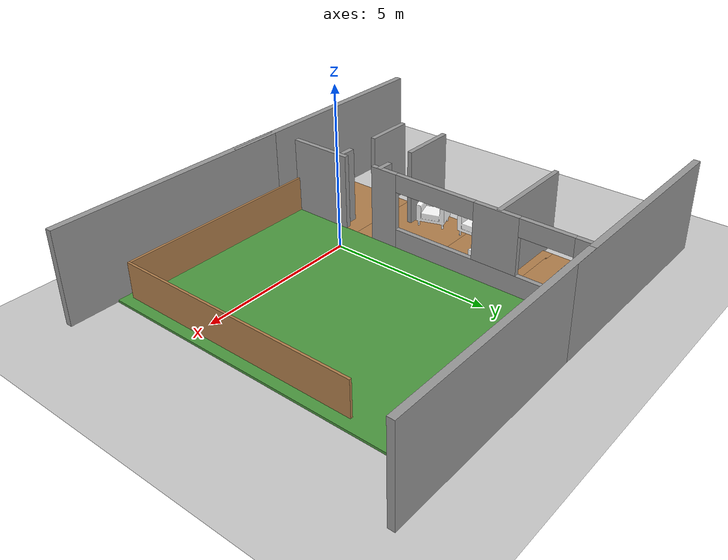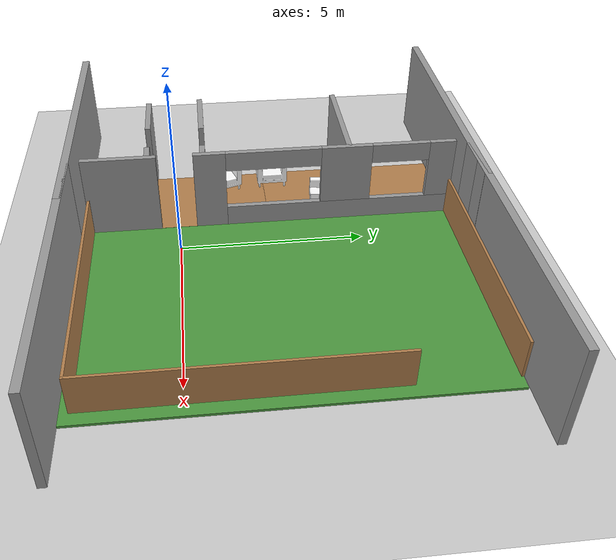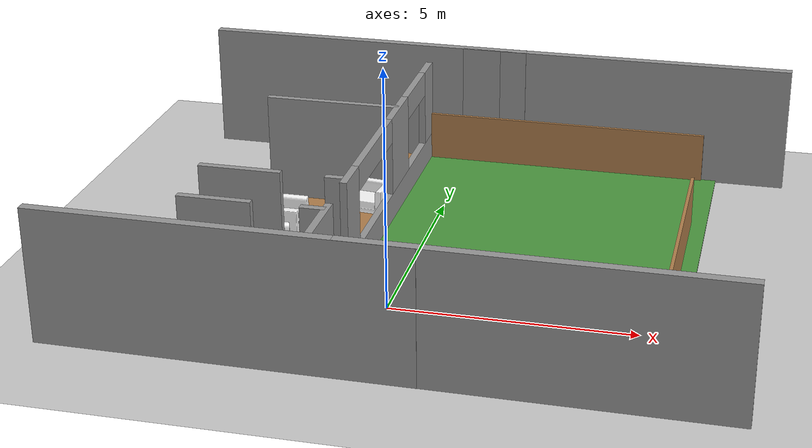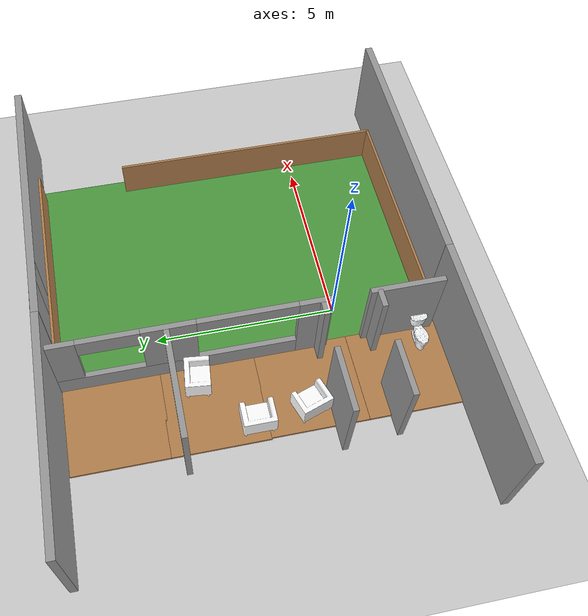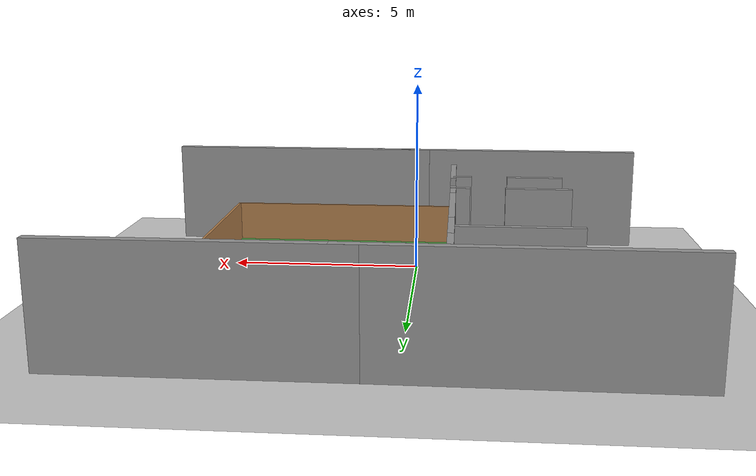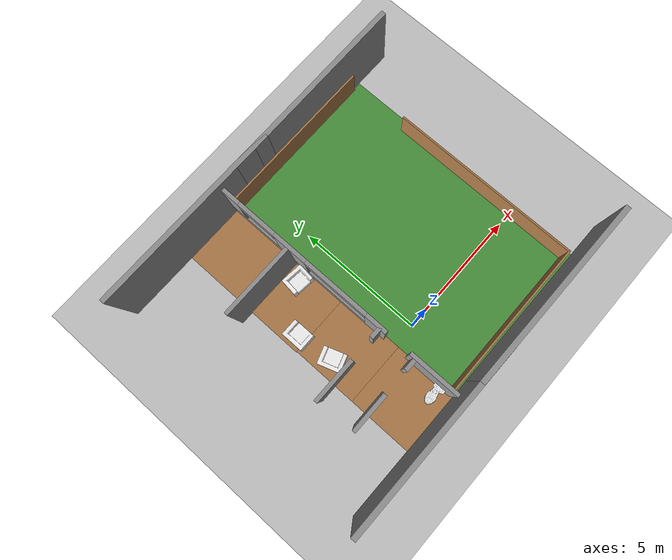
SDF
<sdf version="1.6">
 <world name="default">
  <model name="ground_plane">
   <static>1</static>
   <link name="link">
    <collision name="collision">
     <geometry><plane><normal>0 0 1</normal><size>100 100</size></plane></geometry>
     <surface>
      <contact><collide_bitmask>65535</collide_bitmask></contact>
      <friction><ode><mu>100</mu><mu2>50</mu2></ode></friction>
     </surface>
    </collision>
    <visual name="visual">
     <cast_shadows>0</cast_shadows>
     <geometry><plane><normal>0 0 1</normal><size>100 100</size></plane></geometry>
     <material>
      <script><uri>file://media/materials/scripts/gazebo.material</uri><name>Gazebo/Grey</name></script>
     </material>
    </visual>
   </link>
  </model>
  <model name="toilet">
   <static>1</static>
   <link name="link">
    <collision name="collision">
     <geometry><mesh><uri>model://toilet/meshes/model.dae</uri></mesh></geometry>
    </collision>
    <visual name="visual"><geometry><mesh><uri>model://toilet/meshes/model.dae</uri></mesh></geometry></visual>
   </link>
   <pose>-1.39668 -2.05695 0.439215 0 0 -1.55872</pose>
  </model>
  <model name="model_3">
   <static>1</static>
   <link name="link">
    <collision name="collision">
     <geometry><mesh><uri>model://model_3/meshes/model.dae</uri></mesh></geometry>
    </collision>
    <visual name="visual"><geometry><mesh><uri>model://model_3/meshes/model.dae</uri></mesh></geometry></visual>
   </link>
   <pose>-1.90932 4.48936 0.054313 0 0 -1.67955</pose>
  </model>
  <model name="model_3_clone">
   <static>1</static>
   <link name="link">
    <collision name="collision">
     <geometry><mesh><uri>model://model_3/meshes/model.dae</uri></mesh></geometry>
    </collision>
    <visual name="visual"><geometry><mesh><uri>model://model_3/meshes/model.dae</uri></mesh></geometry></visual>
   </link>
   <pose>-2.95049 0.800187 0.048434 0 -0 0.324666</pose>
  </model>
  <model name="model_3_0">
   <static>1</static>
   <link name="link">
    <collision name="collision">
     <geometry><mesh><uri>model://model_3/meshes/model.dae</uri></mesh></geometry>
    </collision>
    <visual name="visual"><geometry><mesh><uri>model://model_3/meshes/model.dae</uri></mesh></geometry></visual>
   </link>
   <pose>-3.26951 2.32934 0.053094 0 -0 0</pose>
  </model>
  <model name="mud_box">
   <static>1</static>
   <link name="link">
    <collision name="collision"><geometry><box><size>8 10 0.2</size></box></geometry></collision>
    <visual name="visual_1">
     <pose>-2 2.5 0 0 -0 0</pose>
     <cast_shadows>0</cast_shadows>
     <geometry><box><size>4 5 0.2</size></box></geometry>
     <material>
      <script>
       <uri>model://mud_box/materials/scripts</uri>
       <uri>model://mud_box/materials/textures</uri>
       <name>vrc/mud</name>
      </script>
     </material>
    </visual>
    <visual name="visual_2">
     <pose>2 2.5 0 0 -0 0</pose>
     <cast_shadows>0</cast_shadows>
     <geometry><box><size>4 5 0.2</size></box></geometry>
     <material>
      <script>
       <uri>model://mud_box/materials/scripts</uri>
       <uri>model://mud_box/materials/textures</uri>
       <name>vrc/mud</name>
      </script>
     </material>
    </visual>
    <visual name="visual_3">
     <pose>2 -2.5 0 0 -0 0</pose>
     <cast_shadows>0</cast_shadows>
     <geometry><box><size>4 5 0.2</size></box></geometry>
     <material>
      <script>
       <uri>model://mud_box/materials/scripts</uri>
       <uri>model://mud_box/materials/textures</uri>
       <name>vrc/mud</name>
      </script>
     </material>
    </visual>
    <visual name="visual_4">
     <pose>-2 -2.5 0 0 -0 0</pose>
     <cast_shadows>0</cast_shadows>
     <geometry><box><size>4 5 0.2</size></box></geometry>
     <material>
      <script>
       <uri>model://mud_box/materials/scripts</uri>
       <uri>model://mud_box/materials/textures</uri>
       <name>vrc/mud</name>
      </script>
     </material>
    </visual>
   </link>
   <pose>1.51756 2.62532 -0.053989 0 -0 0</pose>
  </model>
  <model name="grey_wall_clone_0_clone">
   <static>1</static>
   <link name="link">
    <pose>0 0 1.4 0 -0 0</pose>
    <collision name="collision"><geometry><box><size>7.5 0.2 2.8</size></box></geometry></collision>
    <visual name="visual">
     <cast_shadows>0</cast_shadows>
     <geometry><box><size>7.5 0.2 2.8</size></box></geometry>
     <material>
      <script>
       <uri>model://grey_wall/materials/scripts</uri>
       <uri>model://grey_wall/materials/textures</uri>
       <name>vrc/grey_wall</name>
      </script>
     </material>
    </visual>
   </link>
   <pose>3.58891 7.79807 -0 0 0 -3.13873</pose>
  </model>
  <model name="grey_wall_clone_0_clone_0">
   <static>1</static>
   <link name="link">
    <pose>0 0 1.4 0 -0 0</pose>
    <collision name="collision"><geometry><box><size>7.5 0.2 2.8</size></box></geometry></collision>
    <visual name="visual">
     <cast_shadows>0</cast_shadows>
     <geometry><box><size>7.5 0.2 2.8</size></box></geometry>
     <material>
      <script>
       <uri>model://grey_wall/materials/scripts</uri>
       <uri>model://grey_wall/materials/textures</uri>
       <name>vrc/grey_wall</name>
      </script>
     </material>
    </visual>
   </link>
   <pose>-2.42988 7.80474 0 0 -0 3.13686</pose>
  </model>
  <model name="grey_wall_clone_0_clone_0_clone">
   <static>1</static>
   <link name="link">
    <pose>0 0 1.4 0 -0 0</pose>
    <collision name="collision"><geometry><box><size>7.5 0.2 2.8</size></box></geometry></collision>
    <visual name="visual">
     <cast_shadows>0</cast_shadows>
     <geometry><box><size>7.5 0.2 2.8</size></box></geometry>
     <material>
      <script>
       <uri>model://grey_wall/materials/scripts</uri>
       <uri>model://grey_wall/materials/textures</uri>
       <name>vrc/grey_wall</name>
      </script>
     </material>
    </visual>
   </link>
   <pose>3.51451 -2.7816 0 0 -0 3.13686</pose>
  </model>
  <model name="grey_wall_clone_0_clone_0_clone_0">
   <static>1</static>
   <link name="link">
    <pose>0 0 1.4 0 -0 0</pose>
    <collision name="collision"><geometry><box><size>7.5 0.2 2.8</size></box></geometry></collision>
    <visual name="visual">
     <cast_shadows>0</cast_shadows>
     <geometry><box><size>7.5 0.2 2.8</size></box></geometry>
     <material>
      <script>
       <uri>model://grey_wall/materials/scripts</uri>
       <uri>model://grey_wall/materials/textures</uri>
       <name>vrc/grey_wall</name>
      </script>
     </material>
    </visual>
   </link>
   <pose>-2.44151 -2.75862 0 0 -0 3.13686</pose>
  </model>
  <model name="grass">
   <link name="Wall_4">
    <pose>0 0 0 0 -0 1.5708</pose>
    <inertial>
     <mass>1</mass>
     <inertia><ixx>1</ixx><ixy>0</ixy><ixz>0</ixz><iyy>1</iyy><iyz>0</iyz><izz>1</izz></inertia>
    </inertial>
    <visual name="Wall_4_Visual">
     <pose>0 0 0.25 0 -0 0</pose>
     <geometry><box><size>10.5 7 0.5</size></box></geometry>
     <material>
      <script><uri>file://media/materials/scripts/gazebo.material</uri><name>Gazebo/Grass</name></script>
      <ambient>0.435 0.796 0.675 1</ambient>
      <shader type="vertex"><normal_map>__default__</normal_map></shader>
      <diffuse>0.7 0.7 0.7 1</diffuse>
      <specular>0.01 0.01 0.01 1</specular>
      <emissive>0 0 0 1</emissive>
     </material>
     <meta><layer>0</layer></meta>
    </visual>
    <collision name="collision_0">
     <pose>10.95 6.2 0.5 0 -0 0</pose>
     <geometry><box><size>10.95 6.2 0.5</size></box></geometry>
     <surface>
      <friction>
       <ode><mu>1</mu><mu2>1</mu2><fdir1>0 0 0</fdir1><slip1>0</slip1><slip2>0</slip2></ode>
       <torsional>
        <coefficient>1</coefficient>
        <patch_radius>0</patch_radius>
        <surface_radius>0</surface_radius>
        <use_patch_radius>1</use_patch_radius>
        <ode><slip>0</slip></ode>
       </torsional>
      </friction>
      <bounce><restitution_coefficient>0</restitution_coefficient><threshold>1e+06</threshold></bounce>
      <contact>
       <collide_without_contact>0</collide_without_contact>
       <collide_without_contact_bitmask>1</collide_without_contact_bitmask>
       <collide_bitmask>1</collide_bitmask>
       <ode>
        <soft_cfm>0</soft_cfm>
        <soft_erp>0.2</soft_erp>
        <kp>1e+13</kp>
        <kd>1</kd>
        <max_vel>0.01</max_vel>
        <min_depth>0</min_depth>
       </ode>
       <bullet>
        <split_impulse>1</split_impulse>
        <split_impulse_penetration_threshold>-0.01</split_impulse_penetration_threshold>
        <soft_cfm>0</soft_cfm>
        <soft_erp>0.2</soft_erp>
        <kp>1e+13</kp>
        <kd>1</kd>
       </bullet>
      </contact>
     </surface>
    </collision>
   </link>
   <static>1</static>
   <pose>2.32059 2.42329 -0.447772 0 0 -0.00069</pose>
  </model>
  <model name="world_frame">
   <link name="Wall_100">
    <pose>-15.3271 -4.993 -0.100255 0 -0 0</pose>
    <visual name="Wall_100_Visual">
     <pose>0 0 0.625 0 -0 0</pose>
     <geometry><box><size>6.495 0.07 1.25</size></box></geometry>
     <material>
      <script><uri>file://media/materials/scripts/gazebo.material</uri><name>Gazebo/Wood</name></script>
      <ambient>1 1 1 1</ambient>
      <shader type="pixel"/>
      <diffuse>1 1 1 1</diffuse>
      <specular>0.2 0.2 0.2 1</specular>
      <emissive>0 0 0 1</emissive>
     </material>
     <meta><layer>0</layer></meta>
    </visual>
    <collision name="Wall_100_Collision">
     <pose>0 0 0.625 0 -0 0</pose>
     <geometry><box><size>6.495 0.07 1.25</size></box></geometry>
     <surface>
      <friction>
       <ode><mu>1</mu><mu2>1</mu2><fdir1>0 0 0</fdir1><slip1>0</slip1><slip2>0</slip2></ode>
       <torsional>
        <coefficient>1</coefficient>
        <patch_radius>0</patch_radius>
        <surface_radius>0</surface_radius>
        <use_patch_radius>1</use_patch_radius>
        <ode><slip>0</slip></ode>
       </torsional>
      </friction>
      <bounce><restitution_coefficient>0</restitution_coefficient><threshold>1e+06</threshold></bounce>
      <contact>
       <collide_without_contact>0</collide_without_contact>
       <collide_without_contact_bitmask>1</collide_without_contact_bitmask>
       <collide_bitmask>1</collide_bitmask>
       <ode>
        <soft_cfm>0</soft_cfm>
        <soft_erp>0.2</soft_erp>
        <kp>1e+13</kp>
        <kd>1</kd>
        <max_vel>0.01</max_vel>
        <min_depth>0</min_depth>
       </ode>
       <bullet>
        <split_impulse>1</split_impulse>
        <split_impulse_penetration_threshold>-0.01</split_impulse_penetration_threshold>
        <soft_cfm>0</soft_cfm>
        <soft_erp>0.2</soft_erp>
        <kp>1e+13</kp>
        <kd>1</kd>
       </bullet>
      </contact>
     </surface>
    </collision>
   </link>
   <link name="Wall_101">
    <pose>-12.1146 -1.193 -0.100255 0 -0 1.5708</pose>
    <visual name="Wall_101_Visual">
     <pose>0 0 0.625 0 -0 0</pose>
     <geometry><box><size>7.6704 0.07 1.25</size></box></geometry>
     <material>
      <script><uri>file://media/materials/scripts/gazebo.material</uri><name>Gazebo/Wood</name></script>
      <ambient>1 1 1 1</ambient>
      <shader type="pixel"/>
      <diffuse>1 1 1 1</diffuse>
      <specular>0.2 0.2 0.2 1</specular>
      <emissive>0 0 0 1</emissive>
     </material>
     <meta><layer>0</layer></meta>
    </visual>
    <collision name="Wall_101_Collision">
     <pose>0 0 0.625 0 -0 0</pose>
     <geometry><box><size>7.6704 0.07 1.25</size></box></geometry>
     <surface>
      <friction>
       <ode><mu>1</mu><mu2>1</mu2><fdir1>0 0 0</fdir1><slip1>0</slip1><slip2>0</slip2></ode>
       <torsional>
        <coefficient>1</coefficient>
        <patch_radius>0</patch_radius>
        <surface_radius>0</surface_radius>
        <use_patch_radius>1</use_patch_radius>
        <ode><slip>0</slip></ode>
       </torsional>
      </friction>
      <bounce><restitution_coefficient>0</restitution_coefficient><threshold>1e+06</threshold></bounce>
      <contact>
       <collide_without_contact>0</collide_without_contact>
       <collide_without_contact_bitmask>1</collide_without_contact_bitmask>
       <collide_bitmask>1</collide_bitmask>
       <ode>
        <soft_cfm>0</soft_cfm>
        <soft_erp>0.2</soft_erp>
        <kp>1e+13</kp>
        <kd>1</kd>
        <max_vel>0.01</max_vel>
        <min_depth>0</min_depth>
       </ode>
       <bullet>
        <split_impulse>1</split_impulse>
        <split_impulse_penetration_threshold>-0.01</split_impulse_penetration_threshold>
        <soft_cfm>0</soft_cfm>
        <soft_erp>0.2</soft_erp>
        <kp>1e+13</kp>
        <kd>1</kd>
       </bullet>
      </contact>
     </surface>
    </collision>
   </link>
   <link name="Wall_131">
    <pose>-18.5396 -4.068 -0.100255 0 -0 1.5708</pose>
    <visual name="Wall_131_Visual">
     <pose>0 0 1.25 0 -0 0</pose>
     <geometry><box><size>2 0.15 2.5</size></box></geometry>
     <material>
      <script><uri>file://media/materials/scripts/gazebo.material</uri><name>Gazebo/Grey</name></script>
      <ambient>1 1 1 1</ambient>
      <shader type="pixel"/>
      <diffuse>0.7 0.7 0.7 1</diffuse>
      <specular>0.01 0.01 0.01 1</specular>
      <emissive>0 0 0 1</emissive>
     </material>
     <meta><layer>0</layer></meta>
    </visual>
    <collision name="Wall_131_Collision">
     <pose>0 0 1.25 0 -0 0</pose>
     <geometry><box><size>2 0.15 2.5</size></box></geometry>
     <surface>
      <friction>
       <ode><mu>1</mu><mu2>1</mu2><fdir1>0 0 0</fdir1><slip1>0</slip1><slip2>0</slip2></ode>
       <torsional>
        <coefficient>1</coefficient>
        <patch_radius>0</patch_radius>
        <surface_radius>0</surface_radius>
        <use_patch_radius>1</use_patch_radius>
        <ode><slip>0</slip></ode>
       </torsional>
      </friction>
      <bounce><restitution_coefficient>0</restitution_coefficient><threshold>1e+06</threshold></bounce>
      <contact>
       <collide_without_contact>0</collide_without_contact>
       <collide_without_contact_bitmask>1</collide_without_contact_bitmask>
       <collide_bitmask>1</collide_bitmask>
       <ode>
        <soft_cfm>0</soft_cfm>
        <soft_erp>0.2</soft_erp>
        <kp>1e+13</kp>
        <kd>1</kd>
        <max_vel>0.01</max_vel>
        <min_depth>0</min_depth>
       </ode>
       <bullet>
        <split_impulse>1</split_impulse>
        <split_impulse_penetration_threshold>-0.01</split_impulse_penetration_threshold>
        <soft_cfm>0</soft_cfm>
        <soft_erp>0.2</soft_erp>
        <kp>1e+13</kp>
        <kd>1</kd>
       </bullet>
      </contact>
     </surface>
    </collision>
   </link>
   <link name="Wall_136">
    <pose>-18.5517 1.54493 -0.100255 0 -0 1.5708</pose>
    <visual name="Wall_136_Visual_4">
     <pose>-1.43693 0 2.225 0 -0 0</pose>
     <geometry><box><size>2.62457 0.15 0.55</size></box></geometry>
     <material>
      <script><uri>file://media/materials/scripts/gazebo.material</uri><name>Gazebo/Grey</name></script>
      <ambient>1 1 1 1</ambient>
      <shader type="pixel"/>
      <diffuse>0.7 0.7 0.7 1</diffuse>
      <specular>0.01 0.01 0.01 1</specular>
      <emissive>0 0 0 1</emissive>
     </material>
     <meta><layer>0</layer></meta>
    </visual>
    <visual name="Wall_136_Visual_3">
     <pose>3.25362 0 1.625 0 -0 0</pose>
     <geometry><box><size>0.742767 0.15 1.75</size></box></geometry>
     <material>
      <script><uri>file://media/materials/scripts/gazebo.material</uri><name>Gazebo/Grey</name></script>
      <ambient>1 1 1 1</ambient>
      <shader type="pixel"/>
      <diffuse>0.7 0.7 0.7 1</diffuse>
      <specular>0.01 0.01 0.01 1</specular>
      <emissive>0 0 0 1</emissive>
     </material>
     <meta><layer>0</layer></meta>
    </visual>
    <visual name="Wall_136_Visual_5">
     <pose>2.08223 0 2.225 0 -0 0</pose>
     <geometry><box><size>1.6 0.15 0.55</size></box></geometry>
     <material>
      <script><uri>file://media/materials/scripts/gazebo.material</uri><name>Gazebo/Grey</name></script>
      <ambient>1 1 1 1</ambient>
      <shader type="pixel"/>
      <diffuse>0.7 0.7 0.7 1</diffuse>
      <specular>0.01 0.01 0.01 1</specular>
      <emissive>0 0 0 1</emissive>
     </material>
     <meta><layer>0</layer></meta>
    </visual>
    <visual name="Wall_136_Visual_0">
     <pose>-3.1871 0 1.25 0 -0 0</pose>
     <geometry><box><size>0.875792 0.15 2.5</size></box></geometry>
     <material>
      <script><uri>file://media/materials/scripts/gazebo.material</uri><name>Gazebo/Grey</name></script>
      <ambient>1 1 1 1</ambient>
      <shader type="pixel"/>
      <diffuse>0.7 0.7 0.7 1</diffuse>
      <specular>0.01 0.01 0.01 1</specular>
      <emissive>0 0 0 1</emissive>
     </material>
     <meta><layer>0</layer></meta>
    </visual>
    <visual name="Wall_136_Visual_1">
     <pose>0.437896 0 0.375 0 -0 0</pose>
     <geometry><box><size>6.37421 0.15 0.75</size></box></geometry>
     <material>
      <script><uri>file://media/materials/scripts/gazebo.material</uri><name>Gazebo/Grey</name></script>
      <ambient>1 1 1 1</ambient>
      <shader type="pixel"/>
      <diffuse>0.7 0.7 0.7 1</diffuse>
      <specular>0.01 0.01 0.01 1</specular>
      <emissive>0 0 0 1</emissive>
     </material>
     <meta><layer>0</layer></meta>
    </visual>
    <visual name="Wall_136_Visual_2">
     <pose>0.578795 0 1.625 0 -0 0</pose>
     <geometry><box><size>1.40688 0.15 1.75</size></box></geometry>
     <material>
      <script><uri>file://media/materials/scripts/gazebo.material</uri><name>Gazebo/Grey</name></script>
      <ambient>1 1 1 1</ambient>
      <shader type="pixel"/>
      <diffuse>0.7 0.7 0.7 1</diffuse>
      <specular>0.01 0.01 0.01 1</specular>
      <emissive>0 0 0 1</emissive>
     </material>
     <meta><layer>0</layer></meta>
    </visual>
    <collision name="Wall_136_Collision_2">
     <pose>0.578795 0 1.625 0 -0 0</pose>
     <geometry><box><size>1.40688 0.15 1.75</size></box></geometry>
     <surface>
      <friction>
       <ode><mu>1</mu><mu2>1</mu2><fdir1>0 0 0</fdir1><slip1>0</slip1><slip2>0</slip2></ode>
       <torsional>
        <coefficient>1</coefficient>
        <patch_radius>0</patch_radius>
        <surface_radius>0</surface_radius>
        <use_patch_radius>1</use_patch_radius>
        <ode><slip>0</slip></ode>
       </torsional>
      </friction>
      <bounce><restitution_coefficient>0</restitution_coefficient><threshold>1e+06</threshold></bounce>
      <contact>
       <collide_without_contact>0</collide_without_contact>
       <collide_without_contact_bitmask>1</collide_without_contact_bitmask>
       <collide_bitmask>1</collide_bitmask>
       <ode>
        <soft_cfm>0</soft_cfm>
        <soft_erp>0.2</soft_erp>
        <kp>1e+13</kp>
        <kd>1</kd>
        <max_vel>0.01</max_vel>
        <min_depth>0</min_depth>
       </ode>
       <bullet>
        <split_impulse>1</split_impulse>
        <split_impulse_penetration_threshold>-0.01</split_impulse_penetration_threshold>
        <soft_cfm>0</soft_cfm>
        <soft_erp>0.2</soft_erp>
        <kp>1e+13</kp>
        <kd>1</kd>
       </bullet>
      </contact>
     </surface>
    </collision>
    <collision name="Wall_136_Collision_0">
     <pose>-3.1871 0 1.25 0 -0 0</pose>
     <geometry><box><size>0.875792 0.15 2.5</size></box></geometry>
     <surface>
      <friction>
       <ode><mu>1</mu><mu2>1</mu2><fdir1>0 0 0</fdir1><slip1>0</slip1><slip2>0</slip2></ode>
       <torsional>
        <coefficient>1</coefficient>
        <patch_radius>0</patch_radius>
        <surface_radius>0</surface_radius>
        <use_patch_radius>1</use_patch_radius>
        <ode><slip>0</slip></ode>
       </torsional>
      </friction>
      <bounce><restitution_coefficient>0</restitution_coefficient><threshold>1e+06</threshold></bounce>
      <contact>
       <collide_without_contact>0</collide_without_contact>
       <collide_without_contact_bitmask>1</collide_without_contact_bitmask>
       <collide_bitmask>1</collide_bitmask>
       <ode>
        <soft_cfm>0</soft_cfm>
        <soft_erp>0.2</soft_erp>
        <kp>1e+13</kp>
        <kd>1</kd>
        <max_vel>0.01</max_vel>
        <min_depth>0</min_depth>
       </ode>
       <bullet>
        <split_impulse>1</split_impulse>
        <split_impulse_penetration_threshold>-0.01</split_impulse_penetration_threshold>
        <soft_cfm>0</soft_cfm>
        <soft_erp>0.2</soft_erp>
        <kp>1e+13</kp>
        <kd>1</kd>
       </bullet>
      </contact>
     </surface>
    </collision>
    <collision name="Wall_136_Collision_5">
     <pose>2.08223 0 2.225 0 -0 0</pose>
     <geometry><box><size>1.6 0.15 0.55</size></box></geometry>
     <surface>
      <friction>
       <ode><mu>1</mu><mu2>1</mu2><fdir1>0 0 0</fdir1><slip1>0</slip1><slip2>0</slip2></ode>
       <torsional>
        <coefficient>1</coefficient>
        <patch_radius>0</patch_radius>
        <surface_radius>0</surface_radius>
        <use_patch_radius>1</use_patch_radius>
        <ode><slip>0</slip></ode>
       </torsional>
      </friction>
      <bounce><restitution_coefficient>0</restitution_coefficient><threshold>1e+06</threshold></bounce>
      <contact>
       <collide_without_contact>0</collide_without_contact>
       <collide_without_contact_bitmask>1</collide_without_contact_bitmask>
       <collide_bitmask>1</collide_bitmask>
       <ode>
        <soft_cfm>0</soft_cfm>
        <soft_erp>0.2</soft_erp>
        <kp>1e+13</kp>
        <kd>1</kd>
        <max_vel>0.01</max_vel>
        <min_depth>0</min_depth>
       </ode>
       <bullet>
        <split_impulse>1</split_impulse>
        <split_impulse_penetration_threshold>-0.01</split_impulse_penetration_threshold>
        <soft_cfm>0</soft_cfm>
        <soft_erp>0.2</soft_erp>
        <kp>1e+13</kp>
        <kd>1</kd>
       </bullet>
      </contact>
     </surface>
    </collision>
    <collision name="Wall_136_Collision_1">
     <pose>0.437896 0 0.375 0 -0 0</pose>
     <geometry><box><size>6.37421 0.15 0.75</size></box></geometry>
     <surface>
      <friction>
       <ode><mu>1</mu><mu2>1</mu2><fdir1>0 0 0</fdir1><slip1>0</slip1><slip2>0</slip2></ode>
       <torsional>
        <coefficient>1</coefficient>
        <patch_radius>0</patch_radius>
        <surface_radius>0</surface_radius>
        <use_patch_radius>1</use_patch_radius>
        <ode><slip>0</slip></ode>
       </torsional>
      </friction>
      <bounce><restitution_coefficient>0</restitution_coefficient><threshold>1e+06</threshold></bounce>
      <contact>
       <collide_without_contact>0</collide_without_contact>
       <collide_without_contact_bitmask>1</collide_without_contact_bitmask>
       <collide_bitmask>1</collide_bitmask>
       <ode>
        <soft_cfm>0</soft_cfm>
        <soft_erp>0.2</soft_erp>
        <kp>1e+13</kp>
        <kd>1</kd>
        <max_vel>0.01</max_vel>
        <min_depth>0</min_depth>
       </ode>
       <bullet>
        <split_impulse>1</split_impulse>
        <split_impulse_penetration_threshold>-0.01</split_impulse_penetration_threshold>
        <soft_cfm>0</soft_cfm>
        <soft_erp>0.2</soft_erp>
        <kp>1e+13</kp>
        <kd>1</kd>
       </bullet>
      </contact>
     </surface>
    </collision>
    <collision name="Wall_136_Collision_4">
     <pose>-1.43693 0 2.225 0 -0 0</pose>
     <geometry><box><size>2.62457 0.15 0.55</size></box></geometry>
     <surface>
      <friction>
       <ode><mu>1</mu><mu2>1</mu2><fdir1>0 0 0</fdir1><slip1>0</slip1><slip2>0</slip2></ode>
       <torsional>
        <coefficient>1</coefficient>
        <patch_radius>0</patch_radius>
        <surface_radius>0</surface_radius>
        <use_patch_radius>1</use_patch_radius>
        <ode><slip>0</slip></ode>
       </torsional>
      </friction>
      <bounce><restitution_coefficient>0</restitution_coefficient><threshold>1e+06</threshold></bounce>
      <contact>
       <collide_without_contact>0</collide_without_contact>
       <collide_without_contact_bitmask>1</collide_without_contact_bitmask>
       <collide_bitmask>1</collide_bitmask>
       <ode>
        <soft_cfm>0</soft_cfm>
        <soft_erp>0.2</soft_erp>
        <kp>1e+13</kp>
        <kd>1</kd>
        <max_vel>0.01</max_vel>
        <min_depth>0</min_depth>
       </ode>
       <bullet>
        <split_impulse>1</split_impulse>
        <split_impulse_penetration_threshold>-0.01</split_impulse_penetration_threshold>
        <soft_cfm>0</soft_cfm>
        <soft_erp>0.2</soft_erp>
        <kp>1e+13</kp>
        <kd>1</kd>
       </bullet>
      </contact>
     </surface>
    </collision>
    <collision name="Wall_136_Collision_3">
     <pose>3.25362 0 1.625 0 -0 0</pose>
     <geometry><box><size>0.742767 0.15 1.75</size></box></geometry>
     <surface>
      <friction>
       <ode><mu>1</mu><mu2>1</mu2><fdir1>0 0 0</fdir1><slip1>0</slip1><slip2>0</slip2></ode>
       <torsional>
        <coefficient>1</coefficient>
        <patch_radius>0</patch_radius>
        <surface_radius>0</surface_radius>
        <use_patch_radius>1</use_patch_radius>
        <ode><slip>0</slip></ode>
       </torsional>
      </friction>
      <bounce><restitution_coefficient>0</restitution_coefficient><threshold>1e+06</threshold></bounce>
      <contact>
       <collide_without_contact>0</collide_without_contact>
       <collide_without_contact_bitmask>1</collide_without_contact_bitmask>
       <collide_bitmask>1</collide_bitmask>
       <ode>
        <soft_cfm>0</soft_cfm>
        <soft_erp>0.2</soft_erp>
        <kp>1e+13</kp>
        <kd>1</kd>
        <max_vel>0.01</max_vel>
        <min_depth>0</min_depth>
       </ode>
       <bullet>
        <split_impulse>1</split_impulse>
        <split_impulse_penetration_threshold>-0.01</split_impulse_penetration_threshold>
        <soft_cfm>0</soft_cfm>
        <soft_erp>0.2</soft_erp>
        <kp>1e+13</kp>
        <kd>1</kd>
       </bullet>
      </contact>
     </surface>
    </collision>
   </link>
   <link name="Wall_154">
    <pose>-20.7665 -3.30688 -0.100255 0 -0 0</pose>
    <visual name="Wall_154_Visual">
     <pose>0 0 1.25 0 -0 0</pose>
     <geometry><box><size>1.5 0.15 2.5</size></box></geometry>
     <material>
      <script><uri>file://media/materials/scripts/gazebo.material</uri><name>Gazebo/Grey</name></script>
      <ambient>1 1 1 1</ambient>
      <shader type="pixel"/>
      <diffuse>0.7 0.7 0.7 1</diffuse>
      <specular>0.01 0.01 0.01 1</specular>
      <emissive>0 0 0 1</emissive>
     </material>
     <meta><layer>0</layer></meta>
    </visual>
    <collision name="Wall_154_Collision">
     <pose>0 0 1.25 0 -0 0</pose>
     <geometry><box><size>1.5 0.15 2.5</size></box></geometry>
     <surface>
      <friction>
       <ode><mu>1</mu><mu2>1</mu2><fdir1>0 0 0</fdir1><slip1>0</slip1><slip2>0</slip2></ode>
       <torsional>
        <coefficient>1</coefficient>
        <patch_radius>0</patch_radius>
        <surface_radius>0</surface_radius>
        <use_patch_radius>1</use_patch_radius>
        <ode><slip>0</slip></ode>
       </torsional>
      </friction>
      <bounce><restitution_coefficient>0</restitution_coefficient><threshold>1e+06</threshold></bounce>
      <contact>
       <collide_without_contact>0</collide_without_contact>
       <collide_without_contact_bitmask>1</collide_without_contact_bitmask>
       <collide_bitmask>1</collide_bitmask>
       <ode>
        <soft_cfm>0</soft_cfm>
        <soft_erp>0.2</soft_erp>
        <kp>1e+13</kp>
        <kd>1</kd>
        <max_vel>0.01</max_vel>
        <min_depth>0</min_depth>
       </ode>
       <bullet>
        <split_impulse>1</split_impulse>
        <split_impulse_penetration_threshold>-0.01</split_impulse_penetration_threshold>
        <soft_cfm>0</soft_cfm>
        <soft_erp>0.2</soft_erp>
        <kp>1e+13</kp>
        <kd>1</kd>
       </bullet>
      </contact>
     </surface>
    </collision>
   </link>
   <link name="Wall_159">
    <pose>-18.7934 -3.30493 -0.100255 0 -0 3.14159</pose>
    <visual name="Wall_159_Visual">
     <pose>0 0 1.25 0 -0 0</pose>
     <geometry><box><size>0.5 0.15 2.5</size></box></geometry>
     <material>
      <script><uri>file://media/materials/scripts/gazebo.material</uri><name>Gazebo/Grey</name></script>
      <ambient>1 1 1 1</ambient>
      <shader type="pixel"/>
      <diffuse>0.7 0.7 0.7 1</diffuse>
      <specular>0.01 0.01 0.01 1</specular>
      <emissive>0 0 0 1</emissive>
     </material>
     <meta><layer>0</layer></meta>
    </visual>
    <collision name="Wall_159_Collision">
     <pose>0 0 1.25 0 -0 0</pose>
     <geometry><box><size>0.5 0.15 2.5</size></box></geometry>
     <surface>
      <friction>
       <ode><mu>1</mu><mu2>1</mu2><fdir1>0 0 0</fdir1><slip1>0</slip1><slip2>0</slip2></ode>
       <torsional>
        <coefficient>1</coefficient>
        <patch_radius>0</patch_radius>
        <surface_radius>0</surface_radius>
        <use_patch_radius>1</use_patch_radius>
        <ode><slip>0</slip></ode>
       </torsional>
      </friction>
      <bounce><restitution_coefficient>0</restitution_coefficient><threshold>1e+06</threshold></bounce>
      <contact>
       <collide_without_contact>0</collide_without_contact>
       <collide_without_contact_bitmask>1</collide_without_contact_bitmask>
       <collide_bitmask>1</collide_bitmask>
       <ode>
        <soft_cfm>0</soft_cfm>
        <soft_erp>0.2</soft_erp>
        <kp>1e+13</kp>
        <kd>1</kd>
        <max_vel>0.01</max_vel>
        <min_depth>0</min_depth>
       </ode>
       <bullet>
        <split_impulse>1</split_impulse>
        <split_impulse_penetration_threshold>-0.01</split_impulse_penetration_threshold>
        <soft_cfm>0</soft_cfm>
        <soft_erp>0.2</soft_erp>
        <kp>1e+13</kp>
        <kd>1</kd>
       </bullet>
      </contact>
     </surface>
    </collision>
   </link>
   <link name="Wall_164">
    <pose>-20.0168 2.18049 -0.100255 0 0 -8.4e-05</pose>
    <visual name="Wall_164_Visual">
     <pose>0 0 1.25 0 -0 0</pose>
     <geometry><box><size>2.97154 0.15 2.5</size></box></geometry>
     <material>
      <script><uri>file://media/materials/scripts/gazebo.material</uri><name>Gazebo/Grey</name></script>
      <ambient>1 1 1 1</ambient>
      <shader type="pixel"/>
      <diffuse>0.7 0.7 0.7 1</diffuse>
      <specular>0.01 0.01 0.01 1</specular>
      <emissive>0 0 0 1</emissive>
     </material>
     <meta><layer>0</layer></meta>
    </visual>
    <collision name="Wall_164_Collision">
     <pose>0 0 1.25 0 -0 0</pose>
     <geometry><box><size>2.97154 0.15 2.5</size></box></geometry>
     <surface>
      <friction>
       <ode><mu>1</mu><mu2>1</mu2><fdir1>0 0 0</fdir1><slip1>0</slip1><slip2>0</slip2></ode>
       <torsional>
        <coefficient>1</coefficient>
        <patch_radius>0</patch_radius>
        <surface_radius>0</surface_radius>
        <use_patch_radius>1</use_patch_radius>
        <ode><slip>0</slip></ode>
       </torsional>
      </friction>
      <bounce><restitution_coefficient>0</restitution_coefficient><threshold>1e+06</threshold></bounce>
      <contact>
       <collide_without_contact>0</collide_without_contact>
       <collide_without_contact_bitmask>1</collide_without_contact_bitmask>
       <collide_bitmask>1</collide_bitmask>
       <ode>
        <soft_cfm>0</soft_cfm>
        <soft_erp>0.2</soft_erp>
        <kp>1e+13</kp>
        <kd>1</kd>
        <max_vel>0.01</max_vel>
        <min_depth>0</min_depth>
       </ode>
       <bullet>
        <split_impulse>1</split_impulse>
        <split_impulse_penetration_threshold>-0.01</split_impulse_penetration_threshold>
        <soft_cfm>0</soft_cfm>
        <soft_erp>0.2</soft_erp>
        <kp>1e+13</kp>
        <kd>1</kd>
       </bullet>
      </contact>
     </surface>
    </collision>
   </link>
   <link name="Wall_174">
    <pose>-20.7716 -1.813 -0.100255 0 -0 0</pose>
    <inertial>
     <inertia><ixx>0</ixx><ixy>0</ixy><ixz>0</ixz><iyy>0</iyy><iyz>0</iyz><izz>0</izz></inertia>
     <mass>0</mass>
    </inertial>
    <visual name="Wall_174_Visual">
     <pose>0 0 1.25 0 -0 0</pose>
     <geometry><box><size>1.72154 0.15 2.5</size></box></geometry>
     <material>
      <script><uri>file://media/materials/scripts/gazebo.material</uri><name>Gazebo/Grey</name></script>
      <ambient>1 1 1 1</ambient>
      <shader type="pixel"/>
      <diffuse>0.7 0.7 0.7 1</diffuse>
      <specular>0.01 0.01 0.01 1</specular>
      <emissive>0 0 0 1</emissive>
     </material>
     <meta><layer>0</layer></meta>
    </visual>
    <collision name="Wall_174_Collision">
     <pose>0 0 1.25 0 -0 0</pose>
     <geometry><box><size>1.72154 0.15 2.5</size></box></geometry>
     <surface>
      <friction>
       <ode><mu>1</mu><mu2>1</mu2><fdir1>0 0 0</fdir1><slip1>0</slip1><slip2>0</slip2></ode>
       <torsional>
        <coefficient>1</coefficient>
        <patch_radius>0</patch_radius>
        <surface_radius>0</surface_radius>
        <use_patch_radius>1</use_patch_radius>
        <ode><slip>0</slip></ode>
       </torsional>
      </friction>
      <bounce><restitution_coefficient>0</restitution_coefficient><threshold>1e+06</threshold></bounce>
      <contact>
       <collide_without_contact>0</collide_without_contact>
       <collide_without_contact_bitmask>1</collide_without_contact_bitmask>
       <collide_bitmask>1</collide_bitmask>
       <ode>
        <soft_cfm>0</soft_cfm>
        <soft_erp>0.2</soft_erp>
        <kp>1e+13</kp>
        <kd>1</kd>
        <max_vel>0.01</max_vel>
        <min_depth>0</min_depth>
       </ode>
       <bullet>
        <split_impulse>1</split_impulse>
        <split_impulse_penetration_threshold>-0.01</split_impulse_penetration_threshold>
        <soft_cfm>0</soft_cfm>
        <soft_erp>0.2</soft_erp>
        <kp>1e+13</kp>
        <kd>1</kd>
       </bullet>
      </contact>
     </surface>
    </collision>
   </link>
   <link name="Wall_176">
    <pose>-18.7419 -1.81759 -0.100255 0 -0 3.14159</pose>
    <visual name="Wall_176_Visual">
     <pose>0 0 1.25 0 -0 0</pose>
     <geometry><box><size>0.5 0.15 2.5</size></box></geometry>
     <material>
      <script><uri>file://media/materials/scripts/gazebo.material</uri><name>Gazebo/Grey</name></script>
      <ambient>1 1 1 1</ambient>
      <shader type="pixel"/>
      <diffuse>0.7 0.7 0.7 1</diffuse>
      <specular>0.01 0.01 0.01 1</specular>
      <emissive>0 0 0 1</emissive>
     </material>
     <meta><layer>0</layer></meta>
    </visual>
    <collision name="Wall_176_Collision">
     <pose>0 0 1.25 0 -0 0</pose>
     <geometry><box><size>0.5 0.15 2.5</size></box></geometry>
     <surface>
      <friction>
       <ode><mu>1</mu><mu2>1</mu2><fdir1>0 0 0</fdir1><slip1>0</slip1><slip2>0</slip2></ode>
       <torsional>
        <coefficient>1</coefficient>
        <patch_radius>0</patch_radius>
        <surface_radius>0</surface_radius>
        <use_patch_radius>1</use_patch_radius>
        <ode><slip>0</slip></ode>
       </torsional>
      </friction>
      <bounce><restitution_coefficient>0</restitution_coefficient><threshold>1e+06</threshold></bounce>
      <contact>
       <collide_without_contact>0</collide_without_contact>
       <collide_without_contact_bitmask>1</collide_without_contact_bitmask>
       <collide_bitmask>1</collide_bitmask>
       <ode>
        <soft_cfm>0</soft_cfm>
        <soft_erp>0.2</soft_erp>
        <kp>1e+13</kp>
        <kd>1</kd>
        <max_vel>0.01</max_vel>
        <min_depth>0</min_depth>
       </ode>
       <bullet>
        <split_impulse>1</split_impulse>
        <split_impulse_penetration_threshold>-0.01</split_impulse_penetration_threshold>
        <soft_cfm>0</soft_cfm>
        <soft_erp>0.2</soft_erp>
        <kp>1e+13</kp>
        <kd>1</kd>
       </bullet>
      </contact>
     </surface>
    </collision>
   </link>
   <link name="Wall_227">
    <pose>-19.7561 3.83536 -0.100255 0 0 -1.5708</pose>
    <visual name="Wall_227_Visual">
     <pose>0 0 0.0775 0 -0 0</pose>
     <geometry><box><size>2.625 2.5 0.155</size></box></geometry>
     <material>
      <script><uri>file://media/materials/scripts/gazebo.material</uri><name>Gazebo/Wood</name></script>
      <ambient>1 1 1 1</ambient>
      <shader type="pixel"/>
      <diffuse>1 1 1 1</diffuse>
      <specular>0.2 0.2 0.2 1</specular>
      <emissive>0 0 0 1</emissive>
     </material>
     <meta><layer>0</layer></meta>
    </visual>
    <collision name="Wall_227_Collision">
     <pose>0 0 0.0775 0 -0 0</pose>
     <geometry><box><size>2.625 2.5 0.155</size></box></geometry>
     <surface>
      <friction>
       <ode><mu>1</mu><mu2>1</mu2><fdir1>0 0 0</fdir1><slip1>0</slip1><slip2>0</slip2></ode>
       <torsional>
        <coefficient>1</coefficient>
        <patch_radius>0</patch_radius>
        <surface_radius>0</surface_radius>
        <use_patch_radius>1</use_patch_radius>
        <ode><slip>0</slip></ode>
       </torsional>
      </friction>
      <bounce><restitution_coefficient>0</restitution_coefficient><threshold>1e+06</threshold></bounce>
      <contact>
       <collide_without_contact>0</collide_without_contact>
       <collide_without_contact_bitmask>1</collide_without_contact_bitmask>
       <collide_bitmask>1</collide_bitmask>
       <ode>
        <soft_cfm>0</soft_cfm>
        <soft_erp>0.2</soft_erp>
        <kp>1e+13</kp>
        <kd>1</kd>
        <max_vel>0.01</max_vel>
        <min_depth>0</min_depth>
       </ode>
       <bullet>
        <split_impulse>1</split_impulse>
        <split_impulse_penetration_threshold>-0.01</split_impulse_penetration_threshold>
        <soft_cfm>0</soft_cfm>
        <soft_erp>0.2</soft_erp>
        <kp>1e+13</kp>
        <kd>1</kd>
       </bullet>
      </contact>
     </surface>
    </collision>
   </link>
   <link name="Wall_231">
    <pose>-19.7567 1.26088 -0.100255 0 0 -1.5708</pose>
    <visual name="Wall_231_Visual">
     <pose>0 0 0.0775 0 -0 0</pose>
     <geometry><box><size>2.625 2.5 0.155</size></box></geometry>
     <material>
      <script><uri>file://media/materials/scripts/gazebo.material</uri><name>Gazebo/Wood</name></script>
      <ambient>1 1 1 1</ambient>
      <shader type="pixel"/>
      <diffuse>1 1 1 1</diffuse>
      <specular>0.2 0.2 0.2 1</specular>
      <emissive>0 0 0 1</emissive>
     </material>
     <meta><layer>0</layer></meta>
    </visual>
    <collision name="Wall_231_Collision">
     <pose>0 0 0.0775 0 -0 0</pose>
     <geometry><box><size>2.625 2.5 0.155</size></box></geometry>
     <surface>
      <friction>
       <ode><mu>1</mu><mu2>1</mu2><fdir1>0 0 0</fdir1><slip1>0</slip1><slip2>0</slip2></ode>
       <torsional>
        <coefficient>1</coefficient>
        <patch_radius>0</patch_radius>
        <surface_radius>0</surface_radius>
        <use_patch_radius>1</use_patch_radius>
        <ode><slip>0</slip></ode>
       </torsional>
      </friction>
      <bounce><restitution_coefficient>0</restitution_coefficient><threshold>1e+06</threshold></bounce>
      <contact>
       <collide_without_contact>0</collide_without_contact>
       <collide_without_contact_bitmask>1</collide_without_contact_bitmask>
       <collide_bitmask>1</collide_bitmask>
       <ode>
        <soft_cfm>0</soft_cfm>
        <soft_erp>0.2</soft_erp>
        <kp>1e+13</kp>
        <kd>1</kd>
        <max_vel>0.01</max_vel>
        <min_depth>0</min_depth>
       </ode>
       <bullet>
        <split_impulse>1</split_impulse>
        <split_impulse_penetration_threshold>-0.01</split_impulse_penetration_threshold>
        <soft_cfm>0</soft_cfm>
        <soft_erp>0.2</soft_erp>
        <kp>1e+13</kp>
        <kd>1</kd>
       </bullet>
      </contact>
     </surface>
    </collision>
   </link>
   <link name="Wall_237">
    <pose>-19.7267 -1.34744 -0.100255 0 0 -1.5708</pose>
    <visual name="Wall_237_Visual">
     <pose>0 0 0.0775 0 -0 0</pose>
     <geometry><box><size>2.625 2.5 0.155</size></box></geometry>
     <material>
      <script><uri>file://media/materials/scripts/gazebo.material</uri><name>Gazebo/Wood</name></script>
      <ambient>1 1 1 1</ambient>
      <shader type="pixel"/>
      <diffuse>1 1 1 1</diffuse>
      <specular>0.2 0.2 0.2 1</specular>
      <emissive>0 0 0 1</emissive>
     </material>
     <meta><layer>0</layer></meta>
    </visual>
    <collision name="Wall_237_Collision">
     <pose>0 0 0.0775 0 -0 0</pose>
     <geometry><box><size>2.625 2.5 0.155</size></box></geometry>
     <surface>
      <friction>
       <ode><mu>1</mu><mu2>1</mu2><fdir1>0 0 0</fdir1><slip1>0</slip1><slip2>0</slip2></ode>
       <torsional>
        <coefficient>1</coefficient>
        <patch_radius>0</patch_radius>
        <surface_radius>0</surface_radius>
        <use_patch_radius>1</use_patch_radius>
        <ode><slip>0</slip></ode>
       </torsional>
      </friction>
      <bounce><restitution_coefficient>0</restitution_coefficient><threshold>1e+06</threshold></bounce>
      <contact>
       <collide_without_contact>0</collide_without_contact>
       <collide_without_contact_bitmask>1</collide_without_contact_bitmask>
       <collide_bitmask>1</collide_bitmask>
       <ode>
        <soft_cfm>0</soft_cfm>
        <soft_erp>0.2</soft_erp>
        <kp>1e+13</kp>
        <kd>1</kd>
        <max_vel>0.01</max_vel>
        <min_depth>0</min_depth>
       </ode>
       <bullet>
        <split_impulse>1</split_impulse>
        <split_impulse_penetration_threshold>-0.01</split_impulse_penetration_threshold>
        <soft_cfm>0</soft_cfm>
        <soft_erp>0.2</soft_erp>
        <kp>1e+13</kp>
        <kd>1</kd>
       </bullet>
      </contact>
     </surface>
    </collision>
   </link>
   <link name="Wall_239">
    <pose>-19.7263 -3.97316 -0.100255 0 0 -1.5708</pose>
    <visual name="Wall_239_Visual">
     <pose>0 0 0.0775 0 -0 0</pose>
     <geometry><box><size>2.625 2.5 0.155</size></box></geometry>
     <material>
      <script><uri>file://media/materials/scripts/gazebo.material</uri><name>Gazebo/Wood</name></script>
      <ambient>1 1 1 1</ambient>
      <shader type="pixel"/>
      <diffuse>1 1 1 1</diffuse>
      <specular>0.2 0.2 0.2 1</specular>
      <emissive>0 0 0 1</emissive>
     </material>
     <meta><layer>0</layer></meta>
    </visual>
    <collision name="Wall_239_Collision">
     <pose>0 0 0.0775 0 -0 0</pose>
     <geometry><box><size>2.625 2.5 0.155</size></box></geometry>
     <surface>
      <friction>
       <ode><mu>1</mu><mu2>1</mu2><fdir1>0 0 0</fdir1><slip1>0</slip1><slip2>0</slip2></ode>
       <torsional>
        <coefficient>1</coefficient>
        <patch_radius>0</patch_radius>
        <surface_radius>0</surface_radius>
        <use_patch_radius>1</use_patch_radius>
        <ode><slip>0</slip></ode>
       </torsional>
      </friction>
      <bounce><restitution_coefficient>0</restitution_coefficient><threshold>1e+06</threshold></bounce>
      <contact>
       <collide_without_contact>0</collide_without_contact>
       <collide_without_contact_bitmask>1</collide_without_contact_bitmask>
       <collide_bitmask>1</collide_bitmask>
       <ode>
        <soft_cfm>0</soft_cfm>
        <soft_erp>0.2</soft_erp>
        <kp>1e+13</kp>
        <kd>1</kd>
        <max_vel>0.01</max_vel>
        <min_depth>0</min_depth>
       </ode>
       <bullet>
        <split_impulse>1</split_impulse>
        <split_impulse_penetration_threshold>-0.01</split_impulse_penetration_threshold>
        <soft_cfm>0</soft_cfm>
        <soft_erp>0.2</soft_erp>
        <kp>1e+13</kp>
        <kd>1</kd>
       </bullet>
      </contact>
     </surface>
    </collision>
   </link>
   <link name="Wall_90">
    <pose>-15.2896 5.107 -0.100255 0 -0 0</pose>
    <visual name="Wall_90_Visual">
     <pose>0 0 0.625 0 -0 0</pose>
     <geometry><box><size>6.42 0.07 1.25</size></box></geometry>
     <material>
      <script><uri>file://media/materials/scripts/gazebo.material</uri><name>Gazebo/Wood</name></script>
      <ambient>1 1 1 1</ambient>
      <shader type="pixel"/>
      <diffuse>1 1 1 1</diffuse>
      <specular>0.2 0.2 0.2 1</specular>
      <emissive>0 0 0 1</emissive>
     </material>
     <meta><layer>0</layer></meta>
    </visual>
    <collision name="Wall_90_Collision">
     <pose>0 0 0.625 0 -0 0</pose>
     <geometry><box><size>6.42 0.07 1.25</size></box></geometry>
     <surface>
      <friction>
       <ode><mu>1</mu><mu2>1</mu2><fdir1>0 0 0</fdir1><slip1>0</slip1><slip2>0</slip2></ode>
       <torsional>
        <coefficient>1</coefficient>
        <patch_radius>0</patch_radius>
        <surface_radius>0</surface_radius>
        <use_patch_radius>1</use_patch_radius>
        <ode><slip>0</slip></ode>
       </torsional>
      </friction>
      <bounce><restitution_coefficient>0</restitution_coefficient><threshold>1e+06</threshold></bounce>
      <contact>
       <collide_without_contact>0</collide_without_contact>
       <collide_without_contact_bitmask>1</collide_without_contact_bitmask>
       <collide_bitmask>1</collide_bitmask>
       <ode>
        <soft_cfm>0</soft_cfm>
        <soft_erp>0.2</soft_erp>
        <kp>1e+13</kp>
        <kd>1</kd>
        <max_vel>0.01</max_vel>
        <min_depth>0</min_depth>
       </ode>
       <bullet>
        <split_impulse>1</split_impulse>
        <split_impulse_penetration_threshold>-0.01</split_impulse_penetration_threshold>
        <soft_cfm>0</soft_cfm>
        <soft_erp>0.2</soft_erp>
        <kp>1e+13</kp>
        <kd>1</kd>
       </bullet>
      </contact>
     </surface>
    </collision>
   </link>
   <static>1</static>
   <pose>17.5761 2.5415 0 0 -0 0</pose>
  </model>
 </world>
</sdf>
